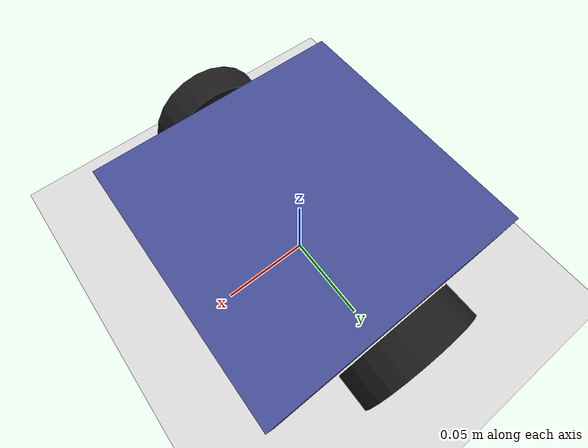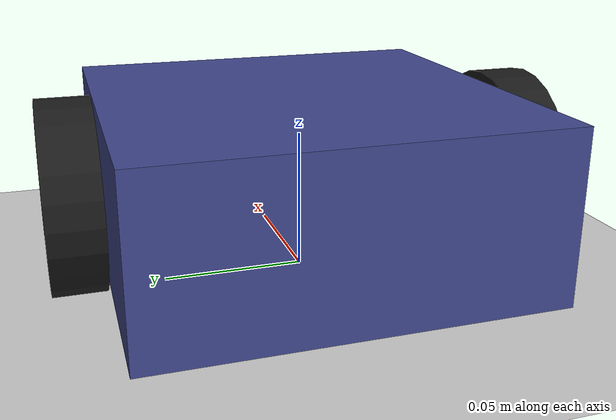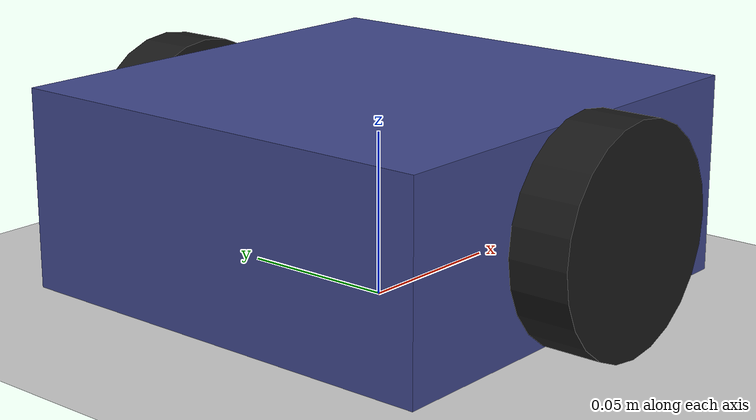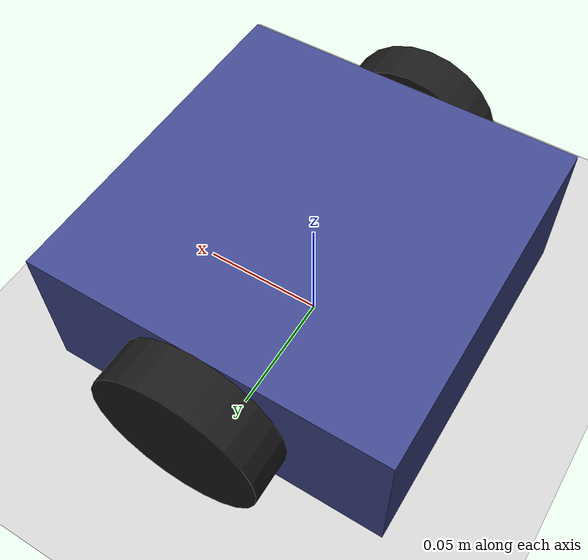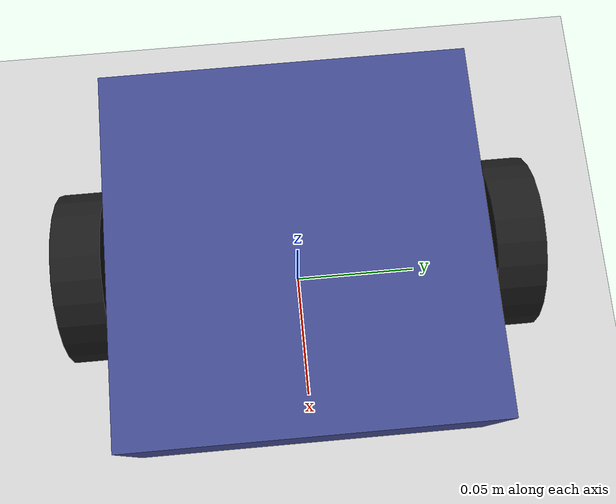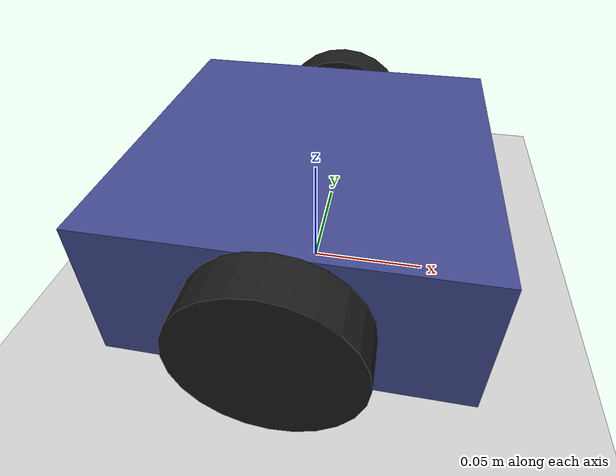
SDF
<?xml version="1.0" ?>
<sdf version="1.8">
  <world name="ee414_diff_drive">

    <gui fullscreen="0">
      <!-- Quick start dialog -->
      <dialog name="quick_start" show_again="true"/>

      <!-- Window -->
      <window>
        <width>1000</width>
        <height>845</height>
        <style
          material_theme="Light"
          material_primary="DeepOrange"
          material_accent="LightBlue"
          toolbar_color_light="#f3f3f3"
          toolbar_text_color_light="#111111"
          toolbar_color_dark="#414141"
          toolbar_text_color_dark="#f3f3f3"
          plugin_toolbar_color_light="#bbdefb"
          plugin_toolbar_text_color_light="#111111"
          plugin_toolbar_color_dark="#607d8b"
          plugin_toolbar_text_color_dark="#eeeeee"
        />
        <menus>
          <drawer default="false">
          </drawer>
        </menus>
        <dialog_on_exit>true</dialog_on_exit>
      </window>

      <!-- GUI plugins -->

      <!-- 3D scene -->
      <plugin filename="MinimalScene" name="3D View">
        <gz-gui>
          <title>3D View</title>
          <property type="bool" key="showTitleBar">false</property>
          <property type="string" key="state">docked</property>
        </gz-gui>

        <engine>ogre2</engine>
        <scene>scene</scene>
        <ambient_light>0.4 0.4 0.4</ambient_light>
        <background_color>0.8 0.8 0.8</background_color>
        <camera_pose>-0.55 -0.55 0.35 0 0.42 0.785</camera_pose>
      </plugin>

      <!-- Plugins that add functionality to the scene -->
      <plugin filename="EntityContextMenuPlugin" name="Entity context menu">
        <gz-gui>
          <property key="state" type="string">floating</property>
          <property key="width" type="double">5</property>
          <property key="height" type="double">5</property>
          <property key="showTitleBar" type="bool">false</property>
        </gz-gui>
      </plugin>
      <plugin filename="GzSceneManager" name="Scene Manager">
        <gz-gui>
          <property key="resizable" type="bool">false</property>
          <property key="width" type="double">5</property>
          <property key="height" type="double">5</property>
          <property key="state" type="string">floating</property>
          <property key="showTitleBar" type="bool">false</property>
        </gz-gui>
      </plugin>
      <plugin filename="InteractiveViewControl" name="Interactive view control">
        <gz-gui>
          <property key="resizable" type="bool">false</property>
          <property key="width" type="double">5</property>
          <property key="height" type="double">5</property>
          <property key="state" type="string">floating</property>
          <property key="showTitleBar" type="bool">false</property>
        </gz-gui>
      </plugin>
      <plugin filename="CameraTracking" name="Camera Tracking">
        <gz-gui>
          <property key="resizable" type="bool">false</property>
          <property key="width" type="double">5</property>
          <property key="height" type="double">5</property>
          <property key="state" type="string">floating</property>
          <property key="showTitleBar" type="bool">false</property>
        </gz-gui>
      </plugin>
      <plugin filename="MarkerManager" name="Marker manager">
        <gz-gui>
          <property key="resizable" type="bool">false</property>
          <property key="width" type="double">5</property>
          <property key="height" type="double">5</property>
          <property key="state" type="string">floating</property>
          <property key="showTitleBar" type="bool">false</property>
        </gz-gui>
      </plugin>
      <plugin filename="SelectEntities" name="Select Entities">
        <gz-gui>
          <property key="resizable" type="bool">false</property>
          <property key="width" type="double">5</property>
          <property key="height" type="double">5</property>
          <property key="state" type="string">floating</property>
          <property key="showTitleBar" type="bool">false</property>
        </gz-gui>
      </plugin>

      <plugin filename="Spawn" name="Spawn Entities">
        <gz-gui>
          <property key="resizable" type="bool">false</property>
          <property key="width" type="double">5</property>
          <property key="height" type="double">5</property>
          <property key="state" type="string">floating</property>
          <property key="showTitleBar" type="bool">false</property>
        </gz-gui>
      </plugin>

      <plugin filename="VisualizationCapabilities" name="Visualization Capabilities">
        <gz-gui>
          <property key="resizable" type="bool">false</property>
          <property key="width" type="double">5</property>
          <property key="height" type="double">5</property>
          <property key="state" type="string">floating</property>
          <property key="showTitleBar" type="bool">false</property>
        </gz-gui>
      </plugin>

      <!-- World control -->
      <plugin filename="WorldControl" name="World control">
        <gz-gui>
          <title>World control</title>
          <property type="bool" key="showTitleBar">false</property>
          <property type="bool" key="resizable">false</property>
          <property type="double" key="height">72</property>
          <property type="double" key="z">1</property>

          <property type="string" key="state">floating</property>
          <anchors target="3D View">
            <line own="left" target="left"/>
            <line own="bottom" target="bottom"/>
          </anchors>
        </gz-gui>

        <play_pause>true</play_pause>
        <step>true</step>
        <start_paused>true</start_paused>
        <use_event>true</use_event>

      </plugin>

      <!-- World statistics -->
      <plugin filename="WorldStats" name="World stats">
        <gz-gui>
          <title>World stats</title>
          <property type="bool" key="showTitleBar">false</property>
          <property type="bool" key="resizable">false</property>
          <property type="double" key="height">110</property>
          <property type="double" key="width">290</property>
          <property type="double" key="z">1</property>

          <property type="string" key="state">floating</property>
          <anchors target="3D View">
            <line own="right" target="right"/>
            <line own="bottom" target="bottom"/>
          </anchors>
        </gz-gui>

        <sim_time>true</sim_time>
        <real_time>true</real_time>
        <real_time_factor>true</real_time_factor>
        <iterations>true</iterations>
      </plugin>

      <!-- Insert simple shapes -->
      <plugin filename="Shapes" name="Shapes">
        <gz-gui>
          <property key="resizable" type="bool">false</property>
          <property key="x" type="double">0</property>
          <property key="y" type="double">0</property>
          <property key="width" type="double">300</property>
          <property key="height" type="double">50</property>
          <property key="state" type="string">floating</property>
          <property key="showTitleBar" type="bool">false</property>
          <property key="cardBackground" type="string">#666666</property>
        </gz-gui>
      </plugin>

      <!-- Insert lights -->
      <plugin filename="Lights" name="Lights">
        <gz-gui>
          <property key="resizable" type="bool">false</property>
          <property key="x" type="double">300</property>
          <property key="y" type="double">0</property>
          <property key="width" type="double">150</property>
          <property key="height" type="double">50</property>
          <property key="state" type="string">floating</property>
          <property key="showTitleBar" type="bool">false</property>
          <property key="cardBackground" type="string">#666666</property>
        </gz-gui>
      </plugin>

      <!-- Translate / rotate -->
      <plugin filename="TransformControl" name="Transform control">
        <gz-gui>
          <property key="resizable" type="bool">false</property>
          <property key="x" type="double">0</property>
          <property key="y" type="double">50</property>
          <property key="width" type="double">250</property>
          <property key="height" type="double">50</property>
          <property key="state" type="string">floating</property>
          <property key="showTitleBar" type="bool">false</property>
          <property key="cardBackground" type="string">#777777</property>
        </gz-gui>
      </plugin>

      <!-- Screenshot -->
      <plugin filename="Screenshot" name="Screenshot">
        <gz-gui>
          <property key="resizable" type="bool">false</property>
          <property key="x" type="double">250</property>
          <property key="y" type="double">50</property>
          <property key="width" type="double">50</property>
          <property key="height" type="double">50</property>
          <property key="state" type="string">floating</property>
          <property key="showTitleBar" type="bool">false</property>
          <property key="cardBackground" type="string">#777777</property>
        </gz-gui>
      </plugin>

      <!-- Copy/Paste -->
      <plugin filename="CopyPaste" name="CopyPaste">
        <gz-gui>
          <property key="resizable" type="bool">false</property>
          <property key="x" type="double">300</property>
          <property key="y" type="double">50</property>
          <property key="width" type="double">100</property>
          <property key="height" type="double">50</property>
          <property key="state" type="string">floating</property>
          <property key="showTitleBar" type="bool">false</property>
          <property key="cardBackground" type="string">#777777</property>
        </gz-gui>
      </plugin>

      <!-- Inspector -->
      <plugin filename="ComponentInspector" name="Component inspector">
        <gz-gui>
          <property type="bool" key="showTitleBar">false</property>
          <property type="string" key="state">docked</property>
        </gz-gui>
      </plugin>

      <!-- Entity tree -->
      <plugin filename="EntityTree" name="Entity tree">
        <gz-gui>
          <property type="bool" key="showTitleBar">false</property>
          <property type="string" key="state">docked</property>
        </gz-gui>
      </plugin>
    </gui>

    <physics name="1ms" type="ignored">
      <max_step_size>0.001</max_step_size>
      <real_time_factor>1.0</real_time_factor>
    </physics>

    <plugin filename="gz-sim-physics-system"
            name="gz::sim::systems::Physics"/>
    <plugin filename="gz-sim-user-commands-system"
            name="gz::sim::systems::UserCommands"/>
    <plugin filename="gz-sim-scene-broadcaster-system"
            name="gz::sim::systems::SceneBroadcaster"/>

    <light type="directional" name="sun">
      <cast_shadows>true</cast_shadows>
      <pose>0 0 10 0 0 0</pose>
      <diffuse>0.8 0.8 0.8 1</diffuse>
      <specular>0.2 0.2 0.2 1</specular>
      <direction>-0.5 0.1 -0.9</direction>
    </light>

    <model name="ground_plane">
      <static>true</static>
      <link name="link">
        <collision name="collision">
          <geometry><plane><normal>0 0 1</normal><size>100 100</size></plane></geometry>
        </collision>
        <visual name="visual">
          <geometry><plane><normal>0 0 1</normal><size>100 100</size></plane></geometry>
          <material>
            <ambient>0.8 0.8 0.8 1</ambient>
            <diffuse>0.8 0.8 0.8 1</diffuse>
          </material>
        </visual>
      </link>
    </model>

    <!-- ================= the robot ================= -->
    <model name="burger_min">
      <pose>0 0 0.035 0 0 0</pose>

      <link name="base_link">
        <inertial>
          <mass>1.0</mass>
          <inertia>
            <ixx>0.003</ixx><iyy>0.003</iyy><izz>0.005</izz>
            <ixy>0</ixy><ixz>0</ixz><iyz>0</iyz>
          </inertia>
        </inertial>
        <collision name="collision">
          <geometry><box><size>0.140 0.140 0.060</size></box></geometry>
        </collision>
        <visual name="visual">
          <geometry><box><size>0.140 0.140 0.060</size></box></geometry>
          <material>
            <ambient>0.25 0.28 0.55 1</ambient>
            <diffuse>0.25 0.28 0.55 1</diffuse>
          </material>
        </visual>
      </link>

      <!-- LEFT WHEEL: origin at y = +0.080, half of L -->
      <link name="wheel_left_link">
        <pose>0 0.080 0 -1.5708 0 0</pose>
        <inertial>
          <mass>0.1</mass>
          <inertia>
            <ixx>0.00003</ixx><iyy>0.00003</iyy><izz>0.00005</izz>
            <ixy>0</ixy><ixz>0</ixz><iyz>0</iyz>
          </inertia>
        </inertial>
        <collision name="collision">
          <geometry><cylinder><radius>0.033</radius><length>0.018</length></cylinder></geometry>
          <surface><friction><ode><mu>1.0</mu><mu2>1.0</mu2></ode></friction></surface>
        </collision>
        <visual name="visual">
          <geometry><cylinder><radius>0.033</radius><length>0.018</length></cylinder></geometry>
          <material>
            <ambient>0.1 0.1 0.1 1</ambient>
            <diffuse>0.1 0.1 0.1 1</diffuse>
          </material>
        </visual>
      </link>

      <!-- RIGHT WHEEL: origin at y = -0.080. The gap is L = 0.160 m. -->
      <link name="wheel_right_link">
        <pose>0 -0.080 0 -1.5708 0 0</pose>
        <inertial>
          <mass>0.1</mass>
          <inertia>
            <ixx>0.00003</ixx><iyy>0.00003</iyy><izz>0.00005</izz>
            <ixy>0</ixy><ixz>0</ixz><iyz>0</iyz>
          </inertia>
        </inertial>
        <collision name="collision">
          <geometry><cylinder><radius>0.033</radius><length>0.018</length></cylinder></geometry>
          <surface><friction><ode><mu>1.0</mu><mu2>1.0</mu2></ode></friction></surface>
        </collision>
        <visual name="visual">
          <geometry><cylinder><radius>0.033</radius><length>0.018</length></cylinder></geometry>
          <material>
            <ambient>0.1 0.1 0.1 1</ambient>
            <diffuse>0.1 0.1 0.1 1</diffuse>
          </material>
        </visual>
      </link>

      <!-- A caster, so the body does not drag. Not part of the kinematics. -->
      <link name="caster_link">
        <pose>-0.055 0 -0.020 0 0 0</pose>
        <inertial>
          <mass>0.05</mass>
          <inertia>
            <ixx>0.000005</ixx><iyy>0.000005</iyy><izz>0.000005</izz>
            <ixy>0</ixy><ixz>0</ixz><iyz>0</iyz>
          </inertia>
        </inertial>
        <collision name="collision">
          <geometry><sphere><radius>0.015</radius></sphere></geometry>
          <surface><friction><ode><mu>0.0</mu><mu2>0.0</mu2></ode></friction></surface>
        </collision>
        <visual name="visual">
          <geometry><sphere><radius>0.015</radius></sphere></geometry>
        </visual>
      </link>

      <joint name="wheel_left_joint" type="revolute">
        <parent>base_link</parent>
        <child>wheel_left_link</child>
        <axis>
          <xyz>0 1 0</xyz>
          <limit><lower>-1e16</lower><upper>1e16</upper></limit>
        </axis>
      </joint>

      <joint name="wheel_right_joint" type="revolute">
        <parent>base_link</parent>
        <child>wheel_right_link</child>
        <axis>
          <xyz>0 1 0</xyz>
          <limit><lower>-1e16</lower><upper>1e16</upper></limit>
        </axis>
      </joint>

      <joint name="caster_joint" type="fixed">
        <parent>base_link</parent>
        <child>caster_link</child>
      </joint>

      <plugin filename="gz-sim-diff-drive-system"
              name="gz::sim::systems::DiffDrive">
        <left_joint>wheel_left_joint</left_joint>
        <right_joint>wheel_right_joint</right_joint>
        <wheel_separation>0.160</wheel_separation>
        <wheel_radius>0.033</wheel_radius>
        <odom_publish_frequency>20</odom_publish_frequency>
        <topic>cmd_vel</topic>
        <odom_topic>odom</odom_topic>
        <frame_id>odom</frame_id>
        <child_frame_id>base_link</child_frame_id>
      </plugin>

    </model>
  </world>
</sdf>
